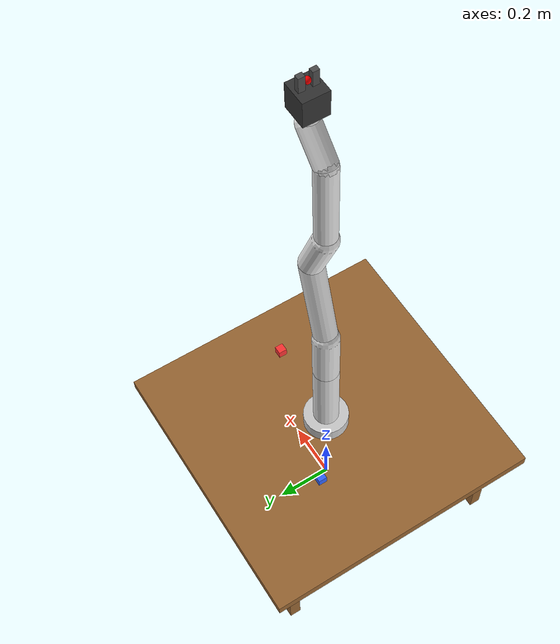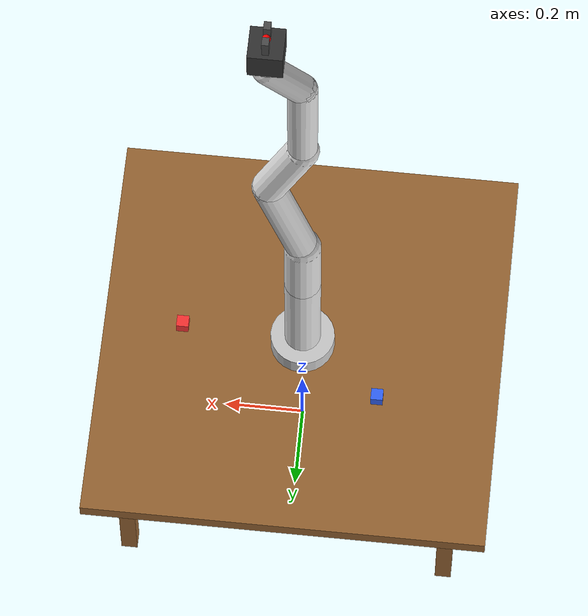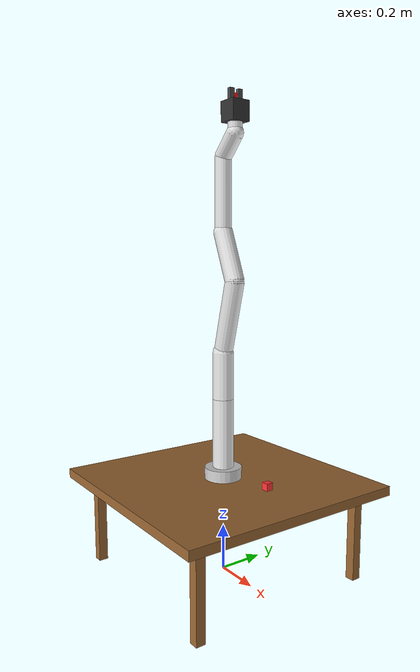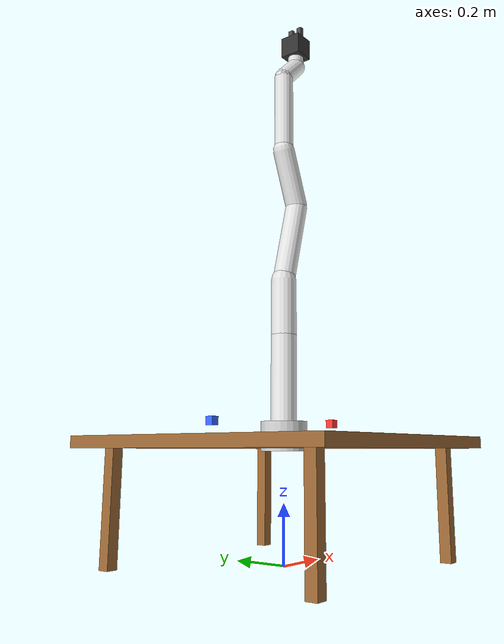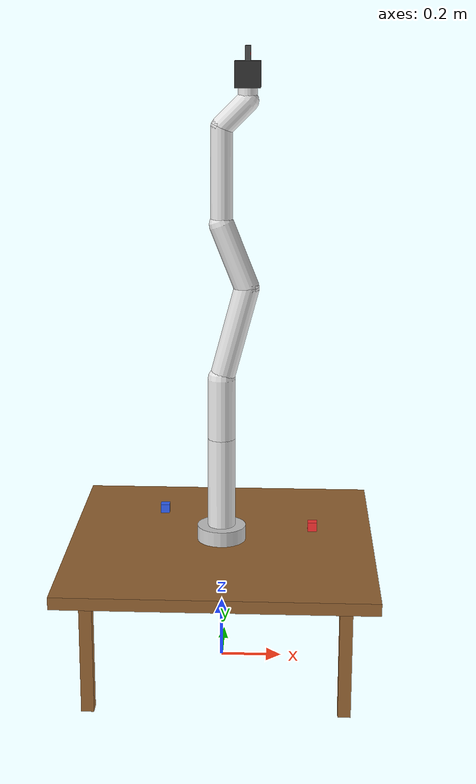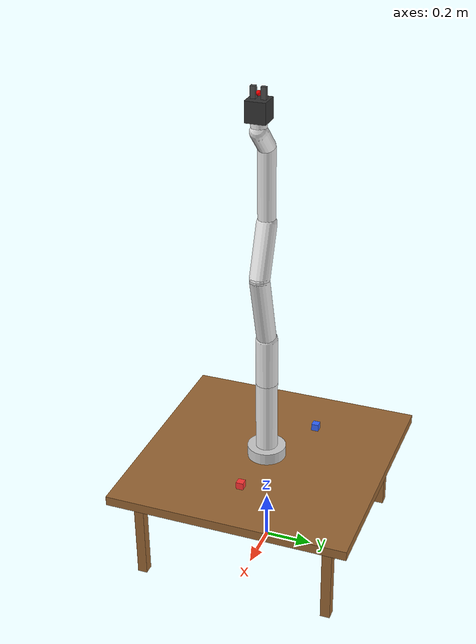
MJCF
<?xml version="1.0" ?>
<mujoco model="panda_table_cube">
    <compiler angle="radian" />
    <option timestep="0.002" gravity="0 0 -9.81" integrator="RK4">
        <flag contact="enable" />
    </option>

    <size nconmax="100" njmax="500" />

    <default>
        <default class="panda">
            <joint type="hinge" damping="5.0" armature="0.1" frictionloss="0.1" />
            <geom friction="1 0.5 0.5" type="capsule" solimp="0.95 0.99 0.001" solref="0.01 1" />
        </default>
        <default class="gripper">
            <joint type="slide" damping="20" armature="0.01" />
            <geom friction="2.0 1.0 0.5" type="box" />
        </default>
        <default class="table">
            <geom type="box" friction="1 0.5 0.5" rgba="0.6 0.4 0.2 1" />
        </default>
    </default>

    <asset>
        <texture type="skybox" builtin="gradient" rgb1="0.6 0.6 0.6" rgb2="0.2 0.2 0.2" width="512" height="512"/>
    </asset>

    <worldbody>
        <light directional="true" pos="0 0 3" dir="0 0 -1"/>

        <!-- Table (static) -->
        <geom class="table" name="table_top" pos="0 0 0.4" size="0.5 0.5 0.02" />
        <geom class="table" name="table_leg1" pos="0.4 0.4 0.2" size="0.02 0.02 0.2" />
        <geom class="table" name="table_leg2" pos="-0.4 0.4 0.2" size="0.02 0.02 0.2" />
        <geom class="table" name="table_leg3" pos="0.4 -0.4 0.2" size="0.02 0.02 0.2" />
        <geom class="table" name="table_leg4" pos="-0.4 -0.4 0.2" size="0.02 0.02 0.2" />

        <!-- Panda Arm (simplified 7-DOF) -->
        <body name="panda_base" pos="0 0 0.42">
            <inertial pos="0 0 0.025" mass="3.0" diaginertia="0.02 0.02 0.02" />
            <geom name="panda_base_geom" type="cylinder" size="0.08 0.05" rgba="0.8 0.8 0.8 1" />

            <!-- Joint 1 -->
            <body name="panda_link1" pos="0 0 0.05">
                <inertial pos="0 0 0.15" mass="3.5" diaginertia="0.08 0.08 0.02" />
                <joint name="panda_joint1" class="panda" axis="0 0 1" range="-2.8973 2.8973" />
                <geom name="panda_link1_geom" class="panda" fromto="0 0 0 0 0 0.3" size="0.045" rgba="0.9 0.9 0.9 1" />

                <!-- Joint 2 -->
                <body name="panda_link2" pos="0 0 0.3">
                    <inertial pos="0 0 0.1" mass="3.5" diaginertia="0.08 0.08 0.02" />
                    <joint name="panda_joint2" class="panda" axis="0 1 0" range="-1.7628 1.7628" />
                    <geom name="panda_link2_geom" class="panda" fromto="0 0 0 0 0 0.2" size="0.045" rgba="0.9 0.9 0.9 1" />

                    <!-- Joint 3 -->
                    <body name="panda_link3" pos="0 0 0.2">
                        <inertial pos="0 0.04 0.15" mass="2.8" diaginertia="0.06 0.06 0.015" />
                        <joint name="panda_joint3" class="panda" axis="0 0 1" range="-2.8973 2.8973" />
                        <geom name="panda_link3_geom" class="panda" fromto="0 0 0 0.08 0 0.3" size="0.04" rgba="0.9 0.9 0.9 1" />

                        <!-- Joint 4 -->
                        <body name="panda_link4" pos="0.08 0 0.3">
                            <inertial pos="-0.04 0 0.1" mass="2.8" diaginertia="0.06 0.06 0.015" />
                            <joint name="panda_joint4" class="panda" axis="0 -1 0" range="-3.0718 -0.0698" />
                            <geom name="panda_link4_geom" class="panda" fromto="0 0 0 -0.08 0 0.2" size="0.04" rgba="0.9 0.9 0.9 1" />

                            <!-- Joint 5 -->
                            <body name="panda_link5" pos="-0.08 0 0.2">
                                <inertial pos="0 0 0.15" mass="2.0" diaginertia="0.04 0.04 0.01" />
                                <joint name="panda_joint5" class="panda" axis="0 0 1" range="-2.8973 2.8973" />
                                <geom name="panda_link5_geom" class="panda" fromto="0 0 0 0 0 0.3" size="0.035" rgba="0.9 0.9 0.9 1" />

                                <!-- Joint 6 -->
                                <body name="panda_link6" pos="0 0 0.3">
                                    <inertial pos="0.04 0 0.05" mass="1.8" diaginertia="0.03 0.03 0.008" />
                                    <joint name="panda_joint6" class="panda" axis="0 1 0" range="-0.0175 3.7525" />
                                    <geom name="panda_link6_geom" class="panda" fromto="0 0 0 0.08 0 0.08" size="0.035" rgba="0.9 0.9 0.9 1" />

                                    <!-- Joint 7 (wrist) -->
                                    <body name="panda_link7" pos="0.08 0 0.08">
                                        <inertial pos="0 0 0.05" mass="1.2" diaginertia="0.02 0.02 0.005" />
                                        <joint name="panda_joint7" class="panda" axis="0 0 1" range="-2.8973 2.8973" />
                                        <geom name="panda_link7_geom" class="panda" fromto="0 0 0 0 0 0.08" size="0.03" rgba="0.9 0.9 0.9 1" />

                                        <!-- End effector / gripper frame -->
                                        <body name="panda_hand" pos="0 0 0.08">
                                            <inertial pos="0 0 0.04" mass="0.8" diaginertia="0.008 0.008 0.008" />
                                            <geom name="panda_hand_geom" type="box" size="0.04 0.04 0.04" friction="2 1 0.5" rgba="0.2 0.2 0.2 1" />

                                            <site name="ee_site" pos="0 0 0.06" rgba="1 0 0 1" size="0.01" />

                                            <!-- Left finger -->
                                            <body name="panda_finger_left" pos="0 0.02 0.06">
                                                <inertial pos="0 0 0.02" mass="0.1" diaginertia="0.001 0.001 0.001" />
                                                <joint name="panda_finger_left_joint" class="gripper" axis="0 1 0" range="-0.04 0.04" />
                                                <geom name="panda_finger_left_geom" type="box" size="0.008 0.01 0.025" friction="2 0.5 0.5" condim="4" rgba="0.3 0.3 0.3 1" />
                                            </body>

                                            <!-- Right finger -->
                                            <body name="panda_finger_right" pos="0 -0.02 0.06">
                                                <inertial pos="0 0 0.02" mass="0.1" diaginertia="0.001 0.001 0.001" />
                                                <joint name="panda_finger_right_joint" class="gripper" axis="0 1 0" range="-0.04 0.04" />
                                                <geom name="panda_finger_right_geom" type="box" size="0.008 0.01 0.025" friction="2 0.5 0.5" condim="4" rgba="0.3 0.3 0.3 1" />
                                            </body>
                                        </body>
                                    </body>
                                </body>
                            </body>
                        </body>
                    </body>
                </body>
            </body>
        </body>

        <!-- Red cube on table (Cube 1) -->
        <body name="cube" pos="0.3 0.0 0.47">
            <inertial pos="0 0 0" mass="0.2" diaginertia="0.0001 0.0001 0.0001" />
            <freejoint name="cube_freejoint" />
            <geom name="cube_geom" type="box" size="0.015 0.015 0.015"
                  friction="1 0.5 0.5" condim="3" rgba="1 0.2 0.2 1" />
        </body>

        <!-- Blue cube on table (Cube 2) -->
        <body name="cube2" pos="-0.2 0.15 0.47">
            <inertial pos="0 0 0" mass="0.2" diaginertia="0.0001 0.0001 0.0001" />
            <freejoint name="cube2_freejoint" />
            <geom name="cube2_geom" type="box" size="0.015 0.015 0.015"
                  friction="1 0.5 0.5" condim="3" rgba="0.2 0.4 1 1" />
        </body>
    </worldbody>

    <actuator>
        <!-- Joint position actuators (high-gain PD control) -->
        <!-- Tuned for stability with 200ms control loop -->
        <position name="panda_pos1" joint="panda_joint1" kp="2000" kv="100" ctrlrange="-2.9671 2.9671" />
        <position name="panda_pos2" joint="panda_joint2" kp="2000" kv="100" ctrlrange="-1.8326 1.8326" />
        <position name="panda_pos3" joint="panda_joint3" kp="2000" kv="100" ctrlrange="-2.9671 2.9671" />
        <position name="panda_pos4" joint="panda_joint4" kp="2000" kv="100" ctrlrange="-3.1416 0.0" />
        <position name="panda_pos5" joint="panda_joint5" kp="1000" kv="50" ctrlrange="-2.9671 2.9671" />
        <position name="panda_pos6" joint="panda_joint6" kp="1000" kv="50" ctrlrange="-0.0873 3.8223" />
        <position name="panda_pos7" joint="panda_joint7" kp="1000" kv="50" ctrlrange="-2.9671 2.9671" />

        <!-- Gripper position control -->
        <position name="panda_gripper_left" joint="panda_finger_left_joint" kp="500" ctrlrange="-0.04 0.04" />
        <position name="panda_gripper_right" joint="panda_finger_right_joint" kp="500" ctrlrange="-0.04 0.04" />
    </actuator>

</mujoco>
